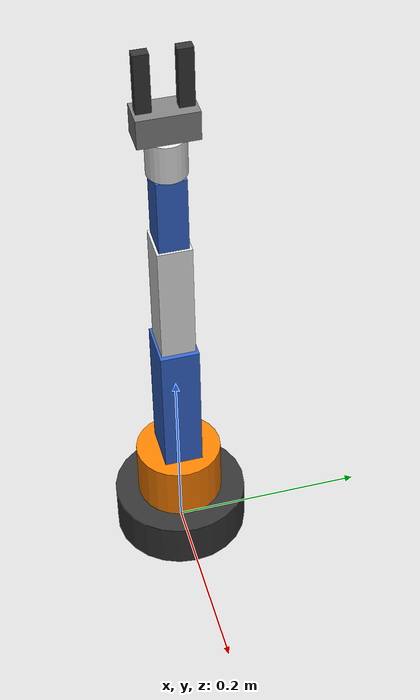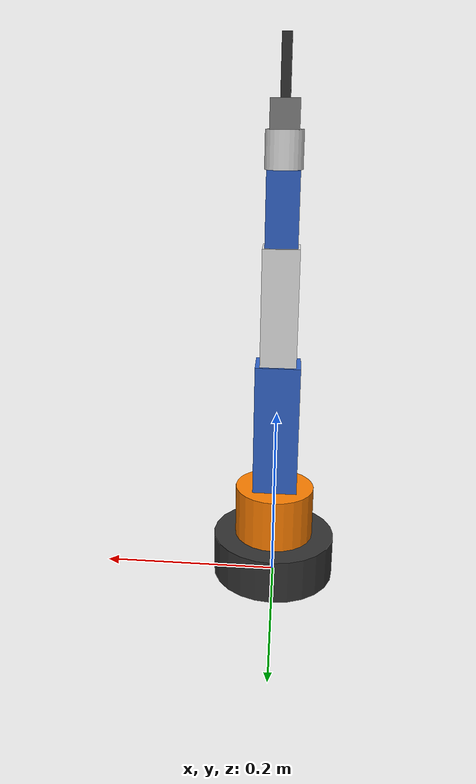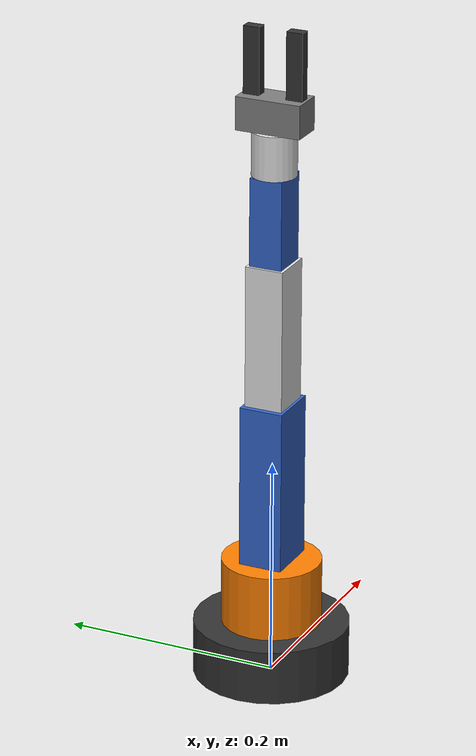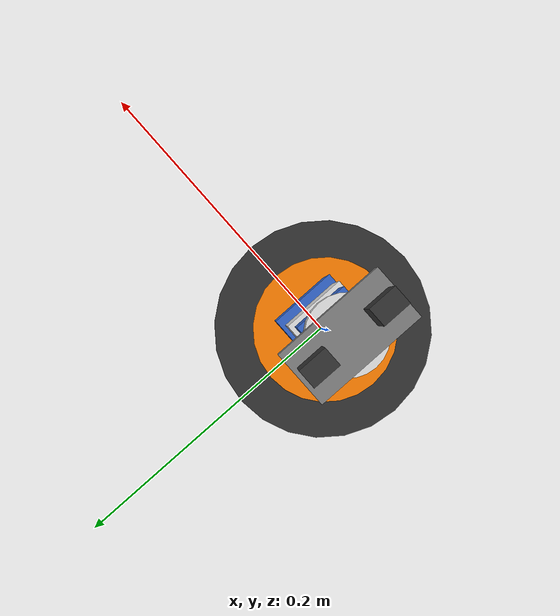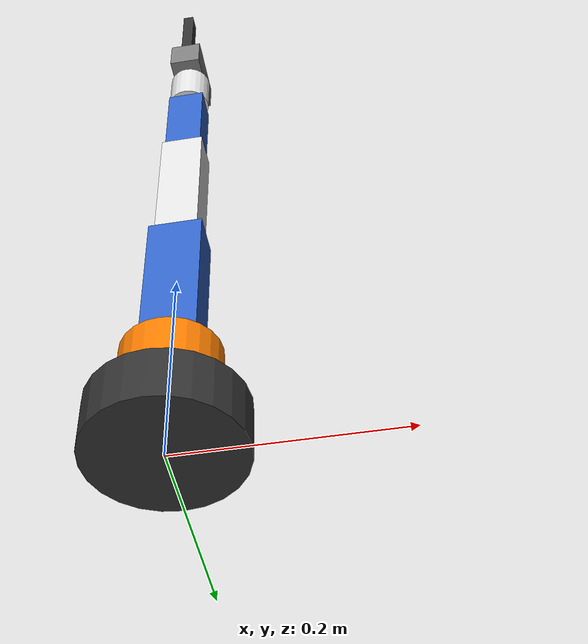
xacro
<?xml version="1.0"?>
<robot xmlns:xacro="http://www.ros.org/wiki/xacro" name="sorting_arm">

  <!-- ===================== CONSTANTS ===================== -->
  <xacro:property name="PI" value="3.1415926535897931"/>

  <!-- ===================== MATERIALS ===================== -->
  <material name="blue">
    <color rgba="0.2 0.4 0.8 1"/>
  </material>

  <material name="white">
    <color rgba="0.9 0.9 0.9 1"/>
  </material>

  <material name="grey">
    <color rgba="0.5 0.5 0.5 1"/>
  </material>

  <material name="dark_grey">
    <color rgba="0.2 0.2 0.2 1"/>
  </material>

  <material name="orange">
    <color rgba="1.0 0.5 0.0 1"/>
  </material>

  <!-- ===================== BASE LINK ===================== -->
  <link name="base_link">
    <visual>
      <origin xyz="0 0 0.025" rpy="0 0 0"/>
      <geometry>
        <cylinder radius="0.07" length="0.05"/>
      </geometry>
      <material name="dark_grey"/>
    </visual>
    <collision>
      <origin xyz="0 0 0.025" rpy="0 0 0"/>
      <geometry>
        <cylinder radius="0.07" length="0.05"/>
      </geometry>
    </collision>
    <inertial>
      <origin xyz="0 0 0.025" rpy="0 0 0"/>
      <mass value="1.5"/>
      <inertia ixx="0.003" ixy="0" ixz="0" iyy="0.003" iyz="0" izz="0.003"/>
    </inertial>
  </link>

  <!-- ===================== LINK 1 - ROTATING BASE ===================== -->
  <link name="link1">
    <visual>
      <origin xyz="0 0 0.03" rpy="0 0 0"/>
      <geometry>
        <cylinder radius="0.045" length="0.06"/>
      </geometry>
      <material name="orange"/>
    </visual>
    <collision>
      <origin xyz="0 0 0.03" rpy="0 0 0"/>
      <geometry>
        <cylinder radius="0.045" length="0.06"/>
      </geometry>
    </collision>
    <inertial>
      <origin xyz="0 0 0.03" rpy="0 0 0"/>
      <mass value="0.4"/>
      <inertia ixx="0.0008" ixy="0" ixz="0" iyy="0.0008" iyz="0" izz="0.0005"/>
    </inertial>
  </link>

  <joint name="joint1" type="revolute">
    <parent link="base_link"/>
    <child link="link1"/>
    <origin xyz="0 0 0.05" rpy="0 0 0"/>
    <axis xyz="0 0 1"/>
    <limit lower="${-PI}" upper="${PI}" effort="50" velocity="1.5"/>
    <dynamics damping="0.7" friction="0.2"/>
  </joint>

  <!-- ===================== LINK 2 - SHOULDER (LONGER) ===================== -->
  <link name="link2">
    <visual>
      <origin xyz="0 0 0.075" rpy="0 0 0"/>
      <geometry>
        <box size="0.05 0.04 0.15"/>
      </geometry>
      <material name="blue"/>
    </visual>
    <collision>
      <origin xyz="0 0 0.075" rpy="0 0 0"/>
      <geometry>
        <box size="0.05 0.04 0.15"/>
      </geometry>
    </collision>
    <inertial>
      <origin xyz="0 0 0.075" rpy="0 0 0"/>
      <mass value="0.35"/>
      <inertia ixx="0.001" ixy="0" ixz="0" iyy="0.001" iyz="0" izz="0.0003"/>
    </inertial>
  </link>

  <joint name="joint2" type="revolute">
    <parent link="link1"/>
    <child link="link2"/>
    <origin xyz="0 0 0.06" rpy="0 0 0"/>
    <axis xyz="0 1 0"/>
    <limit lower="${-PI/2}" upper="${PI/2}" effort="50" velocity="1.5"/>
    <dynamics damping="0.7" friction="0.2"/>
  </joint>

  <!-- ===================== LINK 3 - ELBOW (LONGER) ===================== -->
  <link name="link3">
    <visual>
      <origin xyz="0 0 0.065" rpy="0 0 0"/>
      <geometry>
        <box size="0.04 0.035 0.13"/>
      </geometry>
      <material name="white"/>
    </visual>
    <collision>
      <origin xyz="0 0 0.065" rpy="0 0 0"/>
      <geometry>
        <box size="0.04 0.035 0.13"/>
      </geometry>
    </collision>
    <inertial>
      <origin xyz="0 0 0.065" rpy="0 0 0"/>
      <mass value="0.25"/>
      <inertia ixx="0.0006" ixy="0" ixz="0" iyy="0.0006" iyz="0" izz="0.0001"/>
    </inertial>
  </link>

  <joint name="joint3" type="revolute">
    <parent link="link2"/>
    <child link="link3"/>
    <origin xyz="0 0 0.15" rpy="0 0 0"/>
    <axis xyz="0 1 0"/>
    <limit lower="${-2.5}" upper="${2.5}" effort="40" velocity="1.5"/>
    <dynamics damping="0.5" friction="0.15"/>
  </joint>

  <!-- ===================== LINK 4 - WRIST ===================== -->
  <link name="link4">
    <visual>
      <origin xyz="0 0 0.04" rpy="0 0 0"/>
      <geometry>
        <box size="0.035 0.03 0.08"/>
      </geometry>
      <material name="blue"/>
    </visual>
    <collision>
      <origin xyz="0 0 0.04" rpy="0 0 0"/>
      <geometry>
        <box size="0.035 0.03 0.08"/>
      </geometry>
    </collision>
    <inertial>
      <origin xyz="0 0 0.04" rpy="0 0 0"/>
      <mass value="0.15"/>
      <inertia ixx="0.0002" ixy="0" ixz="0" iyy="0.0002" iyz="0" izz="0.00008"/>
    </inertial>
  </link>

  <joint name="joint4" type="revolute">
    <parent link="link3"/>
    <child link="link4"/>
    <origin xyz="0 0 0.13" rpy="0 0 0"/>
    <axis xyz="0 1 0"/>
    <limit lower="${-PI/2}" upper="${PI/2}" effort="20" velocity="2.0"/>
    <dynamics damping="0.3" friction="0.1"/>
  </joint>

  <!-- ===================== LINK 5 - WRIST ROLL ===================== -->
  <link name="link5">
    <visual>
      <origin xyz="0 0 0.02" rpy="0 0 0"/>
      <geometry>
        <cylinder radius="0.02" length="0.04"/>
      </geometry>
      <material name="white"/>
    </visual>
    <collision>
      <origin xyz="0 0 0.02" rpy="0 0 0"/>
      <geometry>
        <cylinder radius="0.02" length="0.04"/>
      </geometry>
    </collision>
    <inertial>
      <origin xyz="0 0 0.02" rpy="0 0 0"/>
      <mass value="0.08"/>
      <inertia ixx="0.00004" ixy="0" ixz="0" iyy="0.00004" iyz="0" izz="0.00002"/>
    </inertial>
  </link>

  <joint name="joint5" type="revolute">
    <parent link="link4"/>
    <child link="link5"/>
    <origin xyz="0 0 0.08" rpy="0 0 0"/>
    <axis xyz="0 0 1"/>
    <limit lower="${-PI}" upper="${PI}" effort="10" velocity="2.0"/>
    <dynamics damping="0.2" friction="0.05"/>
  </joint>

  <!-- ===================== GRIPPER BASE ===================== -->
  <link name="gripper_base">
    <visual>
      <origin xyz="0 0 0.015" rpy="0 0 0"/>
      <geometry>
        <box size="0.03 0.06 0.03"/>
      </geometry>
      <material name="grey"/>
    </visual>
    <collision>
      <origin xyz="0 0 0.015" rpy="0 0 0"/>
      <geometry>
        <box size="0.03 0.06 0.03"/>
      </geometry>
    </collision>
    <inertial>
      <origin xyz="0 0 0.015" rpy="0 0 0"/>
      <mass value="0.05"/>
      <inertia ixx="0.00002" ixy="0" ixz="0" iyy="0.00002" iyz="0" izz="0.00002"/>
    </inertial>
  </link>

  <joint name="gripper_base_joint" type="fixed">
    <parent link="link5"/>
    <child link="gripper_base"/>
    <origin xyz="0 0 0.04" rpy="0 0 0"/>
  </joint>

  <!-- ===================== LEFT FINGER ===================== -->
  <link name="gripper_left">
    <visual>
      <origin xyz="0 0 0.03" rpy="0 0 0"/>
      <geometry>
        <box size="0.01 0.015 0.06"/>
      </geometry>
      <material name="dark_grey"/>
    </visual>
    <collision>
      <origin xyz="0 0 0.03" rpy="0 0 0"/>
      <geometry>
        <box size="0.01 0.015 0.06"/>
      </geometry>
    </collision>
    <inertial>
      <origin xyz="0 0 0.03" rpy="0 0 0"/>
      <mass value="0.02"/>
      <inertia ixx="0.000005" ixy="0" ixz="0" iyy="0.000005" iyz="0" izz="0.000002"/>
    </inertial>
  </link>

  <joint name="gripper_left_joint" type="prismatic">
    <parent link="gripper_base"/>
    <child link="gripper_left"/>
    <origin xyz="0 0.02 0.03" rpy="0 0 0"/>
    <axis xyz="0 1 0"/>
    <limit lower="0" upper="0.025" effort="10" velocity="0.2"/>
    <dynamics damping="0.5"/>
  </joint>

  <!-- ===================== RIGHT FINGER ===================== -->
  <link name="gripper_right">
    <visual>
      <origin xyz="0 0 0.03" rpy="0 0 0"/>
      <geometry>
        <box size="0.01 0.015 0.06"/>
      </geometry>
      <material name="dark_grey"/>
    </visual>
    <collision>
      <origin xyz="0 0 0.03" rpy="0 0 0"/>
      <geometry>
        <box size="0.01 0.015 0.06"/>
      </geometry>
    </collision>
    <inertial>
      <origin xyz="0 0 0.03" rpy="0 0 0"/>
      <mass value="0.02"/>
      <inertia ixx="0.000005" ixy="0" ixz="0" iyy="0.000005" iyz="0" izz="0.000002"/>
    </inertial>
  </link>

  <joint name="gripper_right_joint" type="prismatic">
    <parent link="gripper_base"/>
    <child link="gripper_right"/>
    <origin xyz="0 -0.02 0.03" rpy="0 0 0"/>
    <axis xyz="0 -1 0"/>
    <limit lower="0" upper="0.025" effort="10" velocity="0.2"/>
    <dynamics damping="0.5"/>
  </joint>

</robot>
